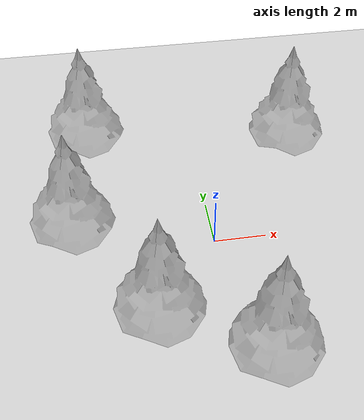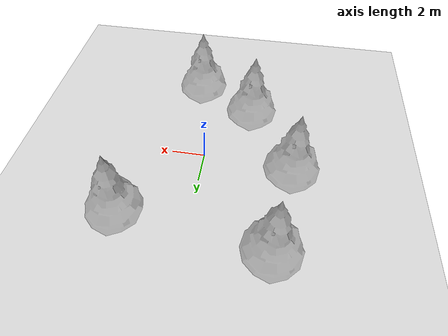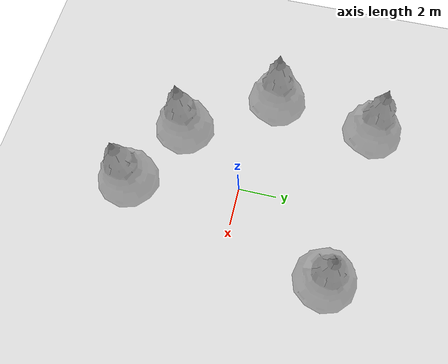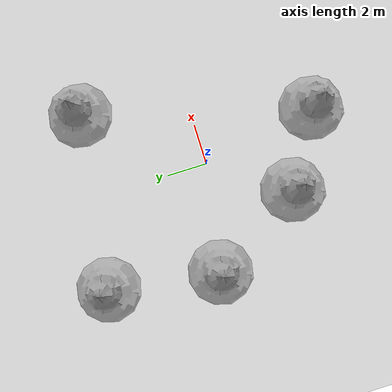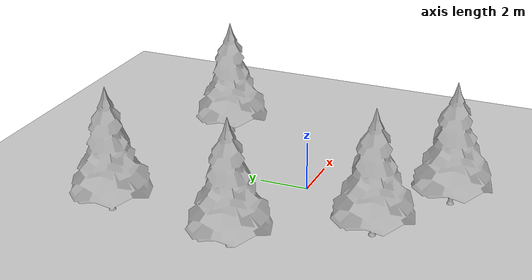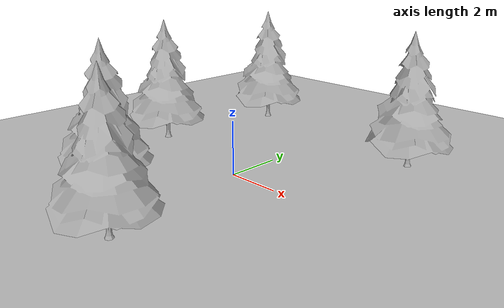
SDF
<sdf version="1.9">
 <world name="new_world">
  <physics type="ode">
   <max_step_size>0.004</max_step_size>
   <real_time_factor>1.0</real_time_factor>
   <real_time_update_rate>250</real_time_update_rate>
  </physics>
  <plugin name="gz::sim::systems::Physics" filename="gz-sim-physics-system"/>
  <plugin name="gz::sim::systems::UserCommands" filename="gz-sim-user-commands-system"/>
  <plugin name="gz::sim::systems::SceneBroadcaster" filename="gz-sim-scene-broadcaster-system"/>
  <plugin name="gz::sim::systems::Contact" filename="gz-sim-contact-system"/>
  <plugin name="gz::sim::systems::Imu" filename="gz-sim-imu-system"/>
  <plugin name="gz::sim::systems::AirPressure" filename="gz-sim-air-pressure-system"/>
  <plugin name="gz::sim::systems::ApplyLinkWrench" filename="gz-sim-apply-link-wrench-system"/>
  <plugin name="gz::sim::systems::Sensors" filename="gz-sim-sensors-system">
   <render_engine>ogre2</render_engine>
  </plugin>
  <gravity>0 0 -9.8</gravity>
  <magnetic_field>6e-06 2.3e-05 -4.2e-05</magnetic_field>
  <atmosphere type="adiabatic"/>
  <scene>
   <grid>false</grid>
   <ambient>0.4 0.4 0.4 1</ambient>
   <background>0.7 0.7 0.7 1</background>
   <shadows>true</shadows>
  </scene>
  <model name="ground_plane">
   <static>true</static>
   <link name="link">
    <collision name="collision">
     <geometry><plane><normal>0 0 1</normal><size>1 1</size></plane></geometry>
    </collision>
    <visual name="visual">
     <geometry><plane><normal>0 0 1</normal><size>100 100</size></plane></geometry>
     <material>
      <ambient>0.8 0.8 0.8 1</ambient>
      <diffuse>0.8 0.8 0.8 1</diffuse>
      <specular>0.8 0.8 0.8 1</specular>
     </material>
    </visual>
    <inertial>
     <mass>1</mass>
     <inertia><ixx>1</ixx><ixy>0</ixy><ixz>0</ixz><iyy>1</iyy><iyz>0</iyz><izz>1</izz></inertia>
    </inertial>
   </link>
  </model>
  <model name="pine_tree">
   <link name="link">
    <visual name="visual">
     <geometry>
      <mesh><uri>file:///home/ubuntu22/gazebo_models/pine_tree/meshes/pine_tree.dae</uri></mesh>
     </geometry>
    </visual>
    <collision name="collision">
     <geometry>
      <mesh><uri>file:///home/ubuntu22/gazebo_models/pine_tree/meshes/pine_tree.dae</uri></mesh>
     </geometry>
    </collision>
    <inertial>
     <mass>1</mass>
     <inertia><ixx>1</ixx><ixy>0</ixy><ixz>0</ixz><iyy>1</iyy><iyz>0</iyz><izz>1</izz></inertia>
    </inertial>
   </link>
   <pose>1.0009000301361084 -5.5963401794433594 -3.4774779611924617e-06 1.5962459146589532e-10 7.2603907728010058e-11 5.7949219813850345e-21</pose>
   <static>true</static>
  </model>
  <model name="pine_tree_1">
   <link name="link">
    <visual name="visual">
     <geometry>
      <mesh><uri>file:///home/ubuntu22/gazebo_models/pine_tree/meshes/pine_tree.dae</uri></mesh>
     </geometry>
    </visual>
    <collision name="collision">
     <geometry>
      <mesh><uri>file:///home/ubuntu22/gazebo_models/pine_tree/meshes/pine_tree.dae</uri></mesh>
     </geometry>
    </collision>
   </link>
   <pose>-2.5027370698934845 -3.5611434244848619 -3.4774779611924592e-06 1.5962459147294267e-10 7.2603907678868589e-11 5.7949220376589839e-21</pose>
   <static>true</static>
  </model>
  <model name="pine_tree_2">
   <link name="link">
    <visual name="visual">
     <geometry>
      <mesh><uri>file:///home/ubuntu22/gazebo_models/pine_tree/meshes/pine_tree.dae</uri></mesh>
     </geometry>
    </visual>
    <collision name="collision">
     <geometry>
      <mesh><uri>file:///home/ubuntu22/gazebo_models/pine_tree/meshes/pine_tree.dae</uri></mesh>
     </geometry>
    </collision>
   </link>
   <pose>3.9715583002912211 5.1607411073832106 -3.4774779611924723e-06 1.5962459152685458e-10 7.2603907747715452e-11 5.7949220355676332e-21</pose>
   <static>true</static>
  </model>
  <model name="pine_tree_3">
   <link name="link">
    <visual name="visual">
     <geometry>
      <mesh><uri>file:///home/ubuntu22/gazebo_models/pine_tree/meshes/pine_tree.dae</uri></mesh>
     </geometry>
    </visual>
    <collision name="collision">
     <geometry>
      <mesh><uri>file:///home/ubuntu22/gazebo_models/pine_tree/meshes/pine_tree.dae</uri></mesh>
     </geometry>
    </collision>
   </link>
   <pose>-4.4338372875470657 6.2870008664739725 -3.477477961192474e-06 1.5962459148673906e-10 7.2603907730612136e-11 5.7949220142289658e-21</pose>
   <static>true</static>
  </model>
  <model name="pine_tree_1_1">
   <link name="link">
    <visual name="visual">
     <geometry>
      <mesh><uri>file:///home/ubuntu22/gazebo_models/pine_tree/meshes/pine_tree.dae</uri></mesh>
     </geometry>
    </visual>
    <collision name="collision">
     <geometry>
      <mesh><uri>file:///home/ubuntu22/gazebo_models/pine_tree/meshes/pine_tree.dae</uri></mesh>
     </geometry>
    </collision>
   </link>
   <pose>-5.2279224058130183 0.93895856547955125 -3.477477961192477e-06 1.596245914778486e-10 7.2603907707681306e-11 5.794922055598081e-21</pose>
   <static>true</static>
  </model>
  <light name="sunUTC" type="directional">
   <pose>0 0 500 0 -0 0</pose>
   <intensity>1</intensity>
   <direction>0.001 0.625 -0.78</direction>
   <diffuse>0.904 0.904 0.904 1</diffuse>
   <specular>0.271 0.271 0.271 1</specular>
   <attenuation><range>2000</range><linear>0</linear><constant>1</constant><quadratic>0</quadratic></attenuation>
   <spot><inner_angle>0</inner_angle><outer_angle>0</outer_angle><falloff>0</falloff></spot>
  </light>
 </world>
</sdf>
